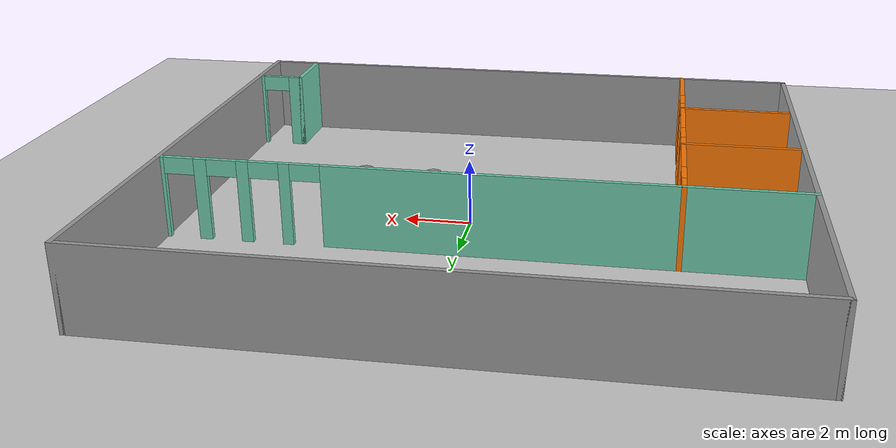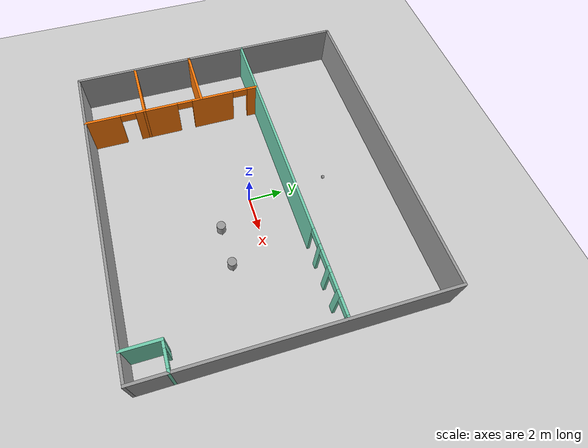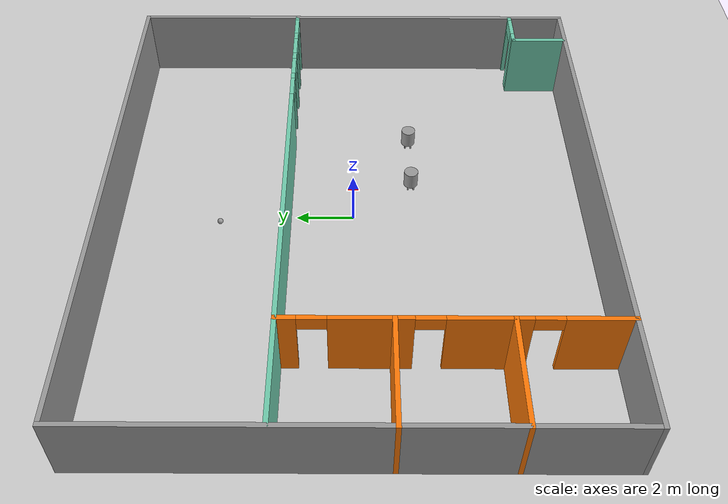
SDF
<sdf version="1.6">
 <world name="default">
  <plugin name="hello" filename="libhello.so"/>
  <light name="sun" type="directional">
   <pose>0 0 10 0 -0 0</pose>
   <diffuse>0.8 0.8 0.8 1</diffuse>
   <specular>0.2 0.2 0.2 1</specular>
   <attenuation>
    <range>1000</range>
    <constant>0.9</constant>
    <linear>0.01</linear>
    <quadratic>0.001</quadratic>
   </attenuation>
   <direction>-0.5 0.1 -0.9</direction>
  </light>
  <model name="ground_plane">
   <static>1</static>
   <link name="link">
    <collision name="collision">
     <geometry><plane><normal>0 0 1</normal><size>100 100</size></plane></geometry>
     <surface><friction><ode><mu>100</mu><mu2>50</mu2></ode></friction></surface>
    </collision>
    <visual name="visual">
     <cast_shadows>0</cast_shadows>
     <geometry><plane><normal>0 0 1</normal><size>100 100</size></plane></geometry>
     <material>
      <script><uri>file://media/materials/scripts/gazebo.material</uri><name>Gazebo/Grey</name></script>
     </material>
    </visual>
   </link>
  </model>
  <gravity>0 0 -9.8</gravity>
  <magnetic_field>6e-06 2.3e-05 -4.2e-05</magnetic_field>
  <atmosphere type="adiabatic"/>
  <physics name="default_physics" default="0" type="ode">
   <max_step_size>0.001</max_step_size>
   <real_time_factor>1</real_time_factor>
   <real_time_update_rate>1000</real_time_update_rate>
  </physics>
  <scene><ambient>0.4 0.4 0.4 1</ambient><background>0.7 0.7 0.7 1</background><shadows>1</shadows></scene>
  <spherical_coordinates>
   <surface_model>EARTH_WGS84</surface_model>
   <latitude_deg>0</latitude_deg>
   <longitude_deg>0</longitude_deg>
   <elevation>0</elevation>
   <heading_deg>0</heading_deg>
  </spherical_coordinates>
  <model name="mybuilding">
   <pose>-0.504834 0.02013 0 0 -0 0</pose>
   <link name="Wall_1">
    <collision name="Wall_1_Collision">
     <geometry><box><size>18.65 0.15 2.5</size></box></geometry>
     <pose>0 0 1.25 0 -0 0</pose>
    </collision>
    <visual name="Wall_1_Visual">
     <pose>0 0 1.25 0 -0 0</pose>
     <geometry><box><size>18.65 0.15 2.5</size></box></geometry>
     <material>
      <script><uri>file://media/materials/scripts/gazebo.material</uri><name>Gazebo/Grey</name></script>
      <ambient>1 1 1 1</ambient>
     </material>
     <meta><layer>0</layer></meta>
    </visual>
    <pose>0 8.25 0 0 -0 0</pose>
   </link>
   <link name="Wall_10">
    <collision name="Wall_10_Collision">
     <geometry><box><size>3.65 0.15 2.5</size></box></geometry>
     <pose>0 0 1.25 0 -0 0</pose>
    </collision>
    <visual name="Wall_10_Visual">
     <pose>0 0 1.25 0 -0 0</pose>
     <geometry><box><size>3.65 0.15 2.5</size></box></geometry>
     <material>
      <script><uri>file://media/materials/scripts/gazebo.material</uri><name>Gazebo/Grey</name></script>
      <ambient>0.996078 0.47451 0.0196078 1</ambient>
     </material>
     <meta><layer>0</layer></meta>
    </visual>
    <pose>-7.5 -1.25 0 0 -0 0</pose>
   </link>
   <link name="Wall_12">
    <collision name="Wall_12_Collision">
     <geometry><box><size>3.65 0.15 2.5</size></box></geometry>
     <pose>0 0 1.25 0 -0 0</pose>
    </collision>
    <visual name="Wall_12_Visual">
     <pose>0 0 1.25 0 -0 0</pose>
     <geometry><box><size>3.65 0.15 2.5</size></box></geometry>
     <material>
      <script><uri>file://media/materials/scripts/gazebo.material</uri><name>Gazebo/Grey</name></script>
      <ambient>0.996078 0.47451 0.0196078 1</ambient>
     </material>
     <meta><layer>0</layer></meta>
    </visual>
    <pose>-7.5 -4.75 0 0 -0 0</pose>
   </link>
   <link name="Wall_14">
    <collision name="Wall_14_Collision">
     <geometry><box><size>2.15 0.15 2.5</size></box></geometry>
     <pose>0 0 1.25 0 -0 0</pose>
    </collision>
    <visual name="Wall_14_Visual">
     <pose>0 0 1.25 0 -0 0</pose>
     <geometry><box><size>2.15 0.15 2.5</size></box></geometry>
     <material>
      <script><uri>file://media/materials/scripts/gazebo.material</uri><name>Gazebo/Grey</name></script>
      <ambient>0.435294 0.796078 0.67451 1</ambient>
     </material>
     <meta><layer>0</layer></meta>
    </visual>
    <pose>7.75 -7.25 0 0 -0 1.5708</pose>
   </link>
   <link name="Wall_15">
    <pose>8.5 -6.25 0 0 -0 0</pose>
    <visual name="Wall_15_Visual_0">
     <pose>-0.577478 0 1.25 0 -0 0</pose>
     <geometry><box><size>0.495043 0.15 2.5</size></box></geometry>
     <material>
      <script><uri>file://media/materials/scripts/gazebo.material</uri><name>Gazebo/Grey</name></script>
      <ambient>0.435294 0.796078 0.67451 1</ambient>
     </material>
     <meta><layer>0</layer></meta>
    </visual>
    <collision name="Wall_15_Collision_0">
     <geometry><box><size>0.495043 0.15 2.5</size></box></geometry>
     <pose>-0.577478 0 1.25 0 -0 0</pose>
    </collision>
    <visual name="Wall_15_Visual_1">
     <pose>0.697522 0 1.25 0 -0 0</pose>
     <geometry><box><size>0.254957 0.15 2.5</size></box></geometry>
     <material>
      <script><uri>file://media/materials/scripts/gazebo.material</uri><name>Gazebo/Grey</name></script>
      <ambient>0.435294 0.796078 0.67451 1</ambient>
     </material>
     <meta><layer>0</layer></meta>
    </visual>
    <collision name="Wall_15_Collision_1">
     <geometry><box><size>0.254957 0.15 2.5</size></box></geometry>
     <pose>0.697522 0 1.25 0 -0 0</pose>
    </collision>
    <visual name="Wall_15_Visual_2">
     <pose>0.120043 0 2.25 0 -0 0</pose>
     <geometry><box><size>0.9 0.15 0.5</size></box></geometry>
     <material>
      <script><uri>file://media/materials/scripts/gazebo.material</uri><name>Gazebo/Grey</name></script>
      <ambient>0.435294 0.796078 0.67451 1</ambient>
     </material>
     <meta><layer>0</layer></meta>
    </visual>
    <collision name="Wall_15_Collision_2">
     <geometry><box><size>0.9 0.15 0.5</size></box></geometry>
     <pose>0.120043 0 2.25 0 -0 0</pose>
    </collision>
   </link>
   <link name="Wall_2">
    <collision name="Wall_2_Collision">
     <geometry><box><size>16.65 0.15 2.5</size></box></geometry>
     <pose>0 0 1.25 0 -0 0</pose>
    </collision>
    <visual name="Wall_2_Visual">
     <pose>0 0 1.25 0 -0 0</pose>
     <geometry><box><size>16.65 0.15 2.5</size></box></geometry>
     <material>
      <script><uri>file://media/materials/scripts/gazebo.material</uri><name>Gazebo/Grey</name></script>
      <ambient>1 1 1 1</ambient>
     </material>
     <meta><layer>0</layer></meta>
    </visual>
    <pose>9.25 0 0 0 0 -1.5708</pose>
   </link>
   <link name="Wall_3">
    <collision name="Wall_3_Collision">
     <geometry><box><size>18.65 0.15 2.5</size></box></geometry>
     <pose>0 0 1.25 0 -0 0</pose>
    </collision>
    <visual name="Wall_3_Visual">
     <pose>0 0 1.25 0 -0 0</pose>
     <geometry><box><size>18.65 0.15 2.5</size></box></geometry>
     <material>
      <script><uri>file://media/materials/scripts/gazebo.material</uri><name>Gazebo/Grey</name></script>
      <ambient>1 1 1 1</ambient>
     </material>
     <meta><layer>0</layer></meta>
    </visual>
    <pose>0 -8.25 0 0 -0 3.14159</pose>
   </link>
   <link name="Wall_4">
    <collision name="Wall_4_Collision">
     <geometry><box><size>16.65 0.15 2.5</size></box></geometry>
     <pose>0 0 1.25 0 -0 0</pose>
    </collision>
    <visual name="Wall_4_Visual">
     <pose>0 0 1.25 0 -0 0</pose>
     <geometry><box><size>16.65 0.15 2.5</size></box></geometry>
     <material>
      <script><uri>file://media/materials/scripts/gazebo.material</uri><name>Gazebo/Grey</name></script>
      <ambient>1 1 1 1</ambient>
     </material>
     <meta><layer>0</layer></meta>
    </visual>
    <pose>-9.25 0 0 0 -0 1.5708</pose>
   </link>
   <link name="Wall_6">
    <pose>0 2.25 0 0 -0 0</pose>
    <visual name="Wall_6_Visual_0">
     <pose>-2.45878 0 1.25 0 -0 0</pose>
     <geometry><box><size>13.7324 0.15 2.5</size></box></geometry>
     <material>
      <script><uri>file://media/materials/scripts/gazebo.material</uri><name>Gazebo/Grey</name></script>
      <ambient>0.435294 0.796078 0.67451 1</ambient>
     </material>
     <meta><layer>0</layer></meta>
    </visual>
    <collision name="Wall_6_Collision_0">
     <geometry><box><size>13.7324 0.15 2.5</size></box></geometry>
     <pose>-2.45878 0 1.25 0 -0 0</pose>
    </collision>
    <visual name="Wall_6_Visual_1">
     <pose>5.46925 0 1.25 0 -0 0</pose>
     <geometry><box><size>0.323609 0.15 2.5</size></box></geometry>
     <material>
      <script><uri>file://media/materials/scripts/gazebo.material</uri><name>Gazebo/Grey</name></script>
      <ambient>0.435294 0.796078 0.67451 1</ambient>
     </material>
     <meta><layer>0</layer></meta>
    </visual>
    <collision name="Wall_6_Collision_1">
     <geometry><box><size>0.323609 0.15 2.5</size></box></geometry>
     <pose>5.46925 0 1.25 0 -0 0</pose>
    </collision>
    <visual name="Wall_6_Visual_2">
     <pose>6.70815 0 1.25 0 -0 0</pose>
     <geometry><box><size>0.3542 0.15 2.5</size></box></geometry>
     <material>
      <script><uri>file://media/materials/scripts/gazebo.material</uri><name>Gazebo/Grey</name></script>
      <ambient>0.435294 0.796078 0.67451 1</ambient>
     </material>
     <meta><layer>0</layer></meta>
    </visual>
    <collision name="Wall_6_Collision_2">
     <geometry><box><size>0.3542 0.15 2.5</size></box></geometry>
     <pose>6.70815 0 1.25 0 -0 0</pose>
    </collision>
    <visual name="Wall_6_Visual_3">
     <pose>7.97765 0 1.25 0 -0 0</pose>
     <geometry><box><size>0.38479 0.15 2.5</size></box></geometry>
     <material>
      <script><uri>file://media/materials/scripts/gazebo.material</uri><name>Gazebo/Grey</name></script>
      <ambient>0.435294 0.796078 0.67451 1</ambient>
     </material>
     <meta><layer>0</layer></meta>
    </visual>
    <collision name="Wall_6_Collision_3">
     <geometry><box><size>0.38479 0.15 2.5</size></box></geometry>
     <pose>7.97765 0 1.25 0 -0 0</pose>
    </collision>
    <visual name="Wall_6_Visual_4">
     <pose>9.19752 0 1.25 0 -0 0</pose>
     <geometry><box><size>0.254957 0.15 2.5</size></box></geometry>
     <material>
      <script><uri>file://media/materials/scripts/gazebo.material</uri><name>Gazebo/Grey</name></script>
      <ambient>0.435294 0.796078 0.67451 1</ambient>
     </material>
     <meta><layer>0</layer></meta>
    </visual>
    <collision name="Wall_6_Collision_4">
     <geometry><box><size>0.254957 0.15 2.5</size></box></geometry>
     <pose>9.19752 0 1.25 0 -0 0</pose>
    </collision>
    <visual name="Wall_6_Visual_5">
     <pose>4.85745 0 2.25 0 -0 0</pose>
     <geometry><box><size>0.9 0.15 0.5</size></box></geometry>
     <material>
      <script><uri>file://media/materials/scripts/gazebo.material</uri><name>Gazebo/Grey</name></script>
      <ambient>0.435294 0.796078 0.67451 1</ambient>
     </material>
     <meta><layer>0</layer></meta>
    </visual>
    <collision name="Wall_6_Collision_5">
     <geometry><box><size>0.9 0.15 0.5</size></box></geometry>
     <pose>4.85745 0 2.25 0 -0 0</pose>
    </collision>
    <visual name="Wall_6_Visual_6">
     <pose>6.08105 0 2.25 0 -0 0</pose>
     <geometry><box><size>0.9 0.15 0.5</size></box></geometry>
     <material>
      <script><uri>file://media/materials/scripts/gazebo.material</uri><name>Gazebo/Grey</name></script>
      <ambient>0.435294 0.796078 0.67451 1</ambient>
     </material>
     <meta><layer>0</layer></meta>
    </visual>
    <collision name="Wall_6_Collision_6">
     <geometry><box><size>0.9 0.15 0.5</size></box></geometry>
     <pose>6.08105 0 2.25 0 -0 0</pose>
    </collision>
    <visual name="Wall_6_Visual_7">
     <pose>7.33525 0 2.25 0 -0 0</pose>
     <geometry><box><size>0.9 0.15 0.5</size></box></geometry>
     <material>
      <script><uri>file://media/materials/scripts/gazebo.material</uri><name>Gazebo/Grey</name></script>
      <ambient>0.435294 0.796078 0.67451 1</ambient>
     </material>
     <meta><layer>0</layer></meta>
    </visual>
    <collision name="Wall_6_Collision_7">
     <geometry><box><size>0.9 0.15 0.5</size></box></geometry>
     <pose>7.33525 0 2.25 0 -0 0</pose>
    </collision>
    <visual name="Wall_6_Visual_8">
     <pose>8.62004 0 2.25 0 -0 0</pose>
     <geometry><box><size>0.9 0.15 0.5</size></box></geometry>
     <material>
      <script><uri>file://media/materials/scripts/gazebo.material</uri><name>Gazebo/Grey</name></script>
      <ambient>0.435294 0.796078 0.67451 1</ambient>
     </material>
     <meta><layer>0</layer></meta>
    </visual>
    <collision name="Wall_6_Collision_8">
     <geometry><box><size>0.9 0.15 0.5</size></box></geometry>
     <pose>8.62004 0 2.25 0 -0 0</pose>
    </collision>
   </link>
   <link name="Wall_8">
    <pose>-5.75 -3 0 0 0 -1.5708</pose>
    <visual name="Wall_8_Visual_0">
     <pose>-4.97355 0 1.25 0 -0 0</pose>
     <geometry><box><size>0.702904 0.15 2.5</size></box></geometry>
     <material>
      <script><uri>file://media/materials/scripts/gazebo.material</uri><name>Gazebo/Grey</name></script>
      <ambient>0.996078 0.47451 0.0196078 1</ambient>
     </material>
     <meta><layer>0</layer></meta>
    </visual>
    <collision name="Wall_8_Collision_0">
     <geometry><box><size>0.702904 0.15 2.5</size></box></geometry>
     <pose>-4.97355 0 1.25 0 -0 0</pose>
    </collision>
    <visual name="Wall_8_Visual_1">
     <pose>-2.44375 0 1.25 0 -0 0</pose>
     <geometry><box><size>2.5567 0.15 2.5</size></box></geometry>
     <material>
      <script><uri>file://media/materials/scripts/gazebo.material</uri><name>Gazebo/Grey</name></script>
      <ambient>0.996078 0.47451 0.0196078 1</ambient>
     </material>
     <meta><layer>0</layer></meta>
    </visual>
    <collision name="Wall_8_Collision_1">
     <geometry><box><size>2.5567 0.15 2.5</size></box></geometry>
     <pose>-2.44375 0 1.25 0 -0 0</pose>
    </collision>
    <visual name="Wall_8_Visual_2">
     <pose>1.01295 0 1.25 0 -0 0</pose>
     <geometry><box><size>2.5567 0.15 2.5</size></box></geometry>
     <material>
      <script><uri>file://media/materials/scripts/gazebo.material</uri><name>Gazebo/Grey</name></script>
      <ambient>0.996078 0.47451 0.0196078 1</ambient>
     </material>
     <meta><layer>0</layer></meta>
    </visual>
    <collision name="Wall_8_Collision_2">
     <geometry><box><size>2.5567 0.15 2.5</size></box></geometry>
     <pose>1.01295 0 1.25 0 -0 0</pose>
    </collision>
    <visual name="Wall_8_Visual_3">
     <pose>4.25815 0 1.25 0 -0 0</pose>
     <geometry><box><size>2.1337 0.15 2.5</size></box></geometry>
     <material>
      <script><uri>file://media/materials/scripts/gazebo.material</uri><name>Gazebo/Grey</name></script>
      <ambient>0.996078 0.47451 0.0196078 1</ambient>
     </material>
     <meta><layer>0</layer></meta>
    </visual>
    <collision name="Wall_8_Collision_3">
     <geometry><box><size>2.1337 0.15 2.5</size></box></geometry>
     <pose>4.25815 0 1.25 0 -0 0</pose>
    </collision>
    <visual name="Wall_8_Visual_4">
     <pose>-4.1721 0 2.25 0 -0 0</pose>
     <geometry><box><size>0.9 0.15 0.5</size></box></geometry>
     <material>
      <script><uri>file://media/materials/scripts/gazebo.material</uri><name>Gazebo/Grey</name></script>
      <ambient>0.996078 0.47451 0.0196078 1</ambient>
     </material>
     <meta><layer>0</layer></meta>
    </visual>
    <collision name="Wall_8_Collision_4">
     <geometry><box><size>0.9 0.15 0.5</size></box></geometry>
     <pose>-4.1721 0 2.25 0 -0 0</pose>
    </collision>
    <visual name="Wall_8_Visual_5">
     <pose>-0.715401 0 2.25 0 -0 0</pose>
     <geometry><box><size>0.9 0.15 0.5</size></box></geometry>
     <material>
      <script><uri>file://media/materials/scripts/gazebo.material</uri><name>Gazebo/Grey</name></script>
      <ambient>0.996078 0.47451 0.0196078 1</ambient>
     </material>
     <meta><layer>0</layer></meta>
    </visual>
    <collision name="Wall_8_Collision_5">
     <geometry><box><size>0.9 0.15 0.5</size></box></geometry>
     <pose>-0.715401 0 2.25 0 -0 0</pose>
    </collision>
    <visual name="Wall_8_Visual_6">
     <pose>2.7413 0 2.25 0 -0 0</pose>
     <geometry><box><size>0.9 0.15 0.5</size></box></geometry>
     <material>
      <script><uri>file://media/materials/scripts/gazebo.material</uri><name>Gazebo/Grey</name></script>
      <ambient>0.996078 0.47451 0.0196078 1</ambient>
     </material>
     <meta><layer>0</layer></meta>
    </visual>
    <collision name="Wall_8_Collision_6">
     <geometry><box><size>0.9 0.15 0.5</size></box></geometry>
     <pose>2.7413 0 2.25 0 -0 0</pose>
    </collision>
   </link>
   <static>1</static>
  </model>
  <model name="robot1">
   <link name="link_1">
    <pose>0.0125 -0 0.3 0 -0 0</pose>
    <inertial>
     <mass>1</mass>
     <inertia><ixx>0.145833</ixx><ixy>0</ixy><ixz>0</ixz><iyy>0.145833</iyy><iyz>0</iyz><izz>0.125</izz></inertia>
    </inertial>
    <visual name="visual">
     <geometry><cylinder><radius>0.25</radius><length>0.6</length></cylinder></geometry>
     <material>
      <lighting>1</lighting>
      <script><uri>file://media/materials/scripts/gazebo.material</uri><name>Gazebo/Grey</name></script>
      <shader type="pixel"><normal_map>__default__</normal_map></shader>
      <ambient>0.3 0.3 0.3 1</ambient>
      <diffuse>0.7 0.7 0.7 1</diffuse>
      <specular>0.01 0.01 0.01 1</specular>
      <emissive>0 0 0 1</emissive>
     </material>
    </visual>
    <collision name="collision">
     <geometry><cylinder><radius>0.25</radius><length>0.6</length></cylinder></geometry>
     <surface>
      <friction>
       <ode><mu>1</mu><mu2>1</mu2><fdir1>0 0 0</fdir1><slip1>0</slip1><slip2>0</slip2></ode>
       <torsional>
        <coefficient>1</coefficient>
        <patch_radius>0</patch_radius>
        <surface_radius>0</surface_radius>
        <use_patch_radius>1</use_patch_radius>
        <ode><slip>0</slip></ode>
       </torsional>
      </friction>
      <bounce><restitution_coefficient>0</restitution_coefficient><threshold>1e+06</threshold></bounce>
      <contact>
       <collide_without_contact>0</collide_without_contact>
       <collide_without_contact_bitmask>1</collide_without_contact_bitmask>
       <collide_bitmask>1</collide_bitmask>
       <ode>
        <soft_cfm>0</soft_cfm>
        <soft_erp>0.2</soft_erp>
        <kp>1e+13</kp>
        <kd>1</kd>
        <max_vel>0.01</max_vel>
        <min_depth>0</min_depth>
       </ode>
       <bullet>
        <split_impulse>1</split_impulse>
        <split_impulse_penetration_threshold>-0.01</split_impulse_penetration_threshold>
        <soft_cfm>0</soft_cfm>
        <soft_erp>0.2</soft_erp>
        <kp>1e+13</kp>
        <kd>1</kd>
       </bullet>
      </contact>
     </surface>
    </collision>
   </link>
   <link name="link_5">
    <pose>-0.0875 0.1 -0.1 1.5707 -0 0</pose>
    <inertial>
     <mass>1</mass>
     <inertia><ixx>0.145833</ixx><ixy>0</ixy><ixz>0</ixz><iyy>0.145833</iyy><iyz>0</iyz><izz>0.125</izz></inertia>
    </inertial>
    <visual name="visual">
     <geometry><cylinder><radius>0.1</radius><length>0.05</length></cylinder></geometry>
     <material>
      <lighting>1</lighting>
      <script><uri>file://media/materials/scripts/gazebo.material</uri><name>Gazebo/Grey</name></script>
      <shader type="pixel"><normal_map>__default__</normal_map></shader>
      <ambient>0.3 0.3 0.3 1</ambient>
      <diffuse>0.7 0.7 0.7 1</diffuse>
      <specular>0.01 0.01 0.01 1</specular>
      <emissive>0 0 0 1</emissive>
     </material>
    </visual>
    <collision name="collision">
     <geometry><cylinder><radius>0.1</radius><length>0.05</length></cylinder></geometry>
     <surface>
      <friction>
       <ode><mu>1</mu><mu2>1</mu2><fdir1>0 0 0</fdir1><slip1>0</slip1><slip2>0</slip2></ode>
       <torsional>
        <coefficient>1</coefficient>
        <patch_radius>0</patch_radius>
        <surface_radius>0</surface_radius>
        <use_patch_radius>1</use_patch_radius>
        <ode><slip>0</slip></ode>
       </torsional>
      </friction>
      <bounce><restitution_coefficient>0</restitution_coefficient><threshold>1e+06</threshold></bounce>
      <contact>
       <collide_without_contact>0</collide_without_contact>
       <collide_without_contact_bitmask>1</collide_without_contact_bitmask>
       <collide_bitmask>1</collide_bitmask>
       <ode>
        <soft_cfm>0</soft_cfm>
        <soft_erp>0.2</soft_erp>
        <kp>1e+13</kp>
        <kd>1</kd>
        <max_vel>0.01</max_vel>
        <min_depth>0</min_depth>
       </ode>
       <bullet>
        <split_impulse>1</split_impulse>
        <split_impulse_penetration_threshold>-0.01</split_impulse_penetration_threshold>
        <soft_cfm>0</soft_cfm>
        <soft_erp>0.2</soft_erp>
        <kp>1e+13</kp>
        <kd>1</kd>
       </bullet>
      </contact>
     </surface>
    </collision>
   </link>
   <link name="link_5_clone">
    <pose>-0.0875 -0.1 -0.1 1.5707 -0 0</pose>
    <inertial>
     <mass>1</mass>
     <inertia><ixx>0.145833</ixx><ixy>0</ixy><ixz>0</ixz><iyy>0.145833</iyy><iyz>0</iyz><izz>0.125</izz></inertia>
    </inertial>
    <visual name="visual">
     <geometry><cylinder><radius>0.1</radius><length>0.05</length></cylinder></geometry>
     <material>
      <lighting>1</lighting>
      <script><uri>file://media/materials/scripts/gazebo.material</uri><name>Gazebo/Grey</name></script>
      <shader type="pixel"><normal_map>__default__</normal_map></shader>
      <ambient>0.3 0.3 0.3 1</ambient>
      <diffuse>0.7 0.7 0.7 1</diffuse>
      <specular>0.01 0.01 0.01 1</specular>
      <emissive>0 0 0 1</emissive>
     </material>
    </visual>
    <collision name="collision">
     <geometry><cylinder><radius>0.1</radius><length>0.05</length></cylinder></geometry>
     <surface>
      <friction>
       <ode><mu>1</mu><mu2>1</mu2><fdir1>0 0 0</fdir1><slip1>0</slip1><slip2>0</slip2></ode>
       <torsional>
        <coefficient>1</coefficient>
        <patch_radius>0</patch_radius>
        <surface_radius>0</surface_radius>
        <use_patch_radius>1</use_patch_radius>
        <ode><slip>0</slip></ode>
       </torsional>
      </friction>
      <bounce><restitution_coefficient>0</restitution_coefficient><threshold>1e+06</threshold></bounce>
      <contact>
       <collide_without_contact>0</collide_without_contact>
       <collide_without_contact_bitmask>1</collide_without_contact_bitmask>
       <collide_bitmask>1</collide_bitmask>
       <ode>
        <soft_cfm>0</soft_cfm>
        <soft_erp>0.2</soft_erp>
        <kp>1e+13</kp>
        <kd>1</kd>
        <max_vel>0.01</max_vel>
        <min_depth>0</min_depth>
       </ode>
       <bullet>
        <split_impulse>1</split_impulse>
        <split_impulse_penetration_threshold>-0.01</split_impulse_penetration_threshold>
        <soft_cfm>0</soft_cfm>
        <soft_erp>0.2</soft_erp>
        <kp>1e+13</kp>
        <kd>1</kd>
       </bullet>
      </contact>
     </surface>
    </collision>
   </link>
   <link name="link_5_clone_clone">
    <pose>0.1625 -0 -0.1 1.5707 -0 0</pose>
    <inertial>
     <mass>1</mass>
     <inertia><ixx>0.145833</ixx><ixy>0</ixy><ixz>0</ixz><iyy>0.145833</iyy><iyz>0</iyz><izz>0.125</izz></inertia>
    </inertial>
    <visual name="visual">
     <geometry><cylinder><radius>0.1</radius><length>0.05</length></cylinder></geometry>
     <material>
      <lighting>1</lighting>
      <script><uri>file://media/materials/scripts/gazebo.material</uri><name>Gazebo/Grey</name></script>
      <shader type="pixel"><normal_map>__default__</normal_map></shader>
      <ambient>0.3 0.3 0.3 1</ambient>
      <diffuse>0.7 0.7 0.7 1</diffuse>
      <specular>0.01 0.01 0.01 1</specular>
      <emissive>0 0 0 1</emissive>
     </material>
    </visual>
    <collision name="collision">
     <geometry><cylinder><radius>0.1</radius><length>0.05</length></cylinder></geometry>
     <surface>
      <friction>
       <ode><mu>1</mu><mu2>1</mu2><fdir1>0 0 0</fdir1><slip1>0</slip1><slip2>0</slip2></ode>
       <torsional>
        <coefficient>1</coefficient>
        <patch_radius>0</patch_radius>
        <surface_radius>0</surface_radius>
        <use_patch_radius>1</use_patch_radius>
        <ode><slip>0</slip></ode>
       </torsional>
      </friction>
      <bounce><restitution_coefficient>0</restitution_coefficient><threshold>1e+06</threshold></bounce>
      <contact>
       <collide_without_contact>0</collide_without_contact>
       <collide_without_contact_bitmask>1</collide_without_contact_bitmask>
       <collide_bitmask>1</collide_bitmask>
       <ode>
        <soft_cfm>0</soft_cfm>
        <soft_erp>0.2</soft_erp>
        <kp>1e+13</kp>
        <kd>1</kd>
        <max_vel>0.01</max_vel>
        <min_depth>0</min_depth>
       </ode>
       <bullet>
        <split_impulse>1</split_impulse>
        <split_impulse_penetration_threshold>-0.01</split_impulse_penetration_threshold>
        <soft_cfm>0</soft_cfm>
        <soft_erp>0.2</soft_erp>
        <kp>1e+13</kp>
        <kd>1</kd>
       </bullet>
      </contact>
     </surface>
    </collision>
   </link>
   <joint name="link_1_JOINT_0" type="fixed">
    <parent>link_1</parent>
    <child>link_5</child>
    <pose>0 0 0 0 -0 0.01</pose>
    <physics>
     <ode><limit><cfm>0</cfm><erp>0.2</erp></limit><suspension><cfm>0</cfm><erp>0.2</erp></suspension></ode>
    </physics>
   </joint>
   <joint name="link_1_JOINT_1" type="fixed">
    <parent>link_1</parent>
    <child>link_5_clone</child>
    <physics>
     <ode><limit><cfm>0</cfm><erp>0.2</erp></limit><suspension><cfm>0</cfm><erp>0.2</erp></suspension></ode>
    </physics>
   </joint>
   <joint name="link_1_JOINT_2" type="revolute">
    <parent>link_1</parent>
    <child>link_5_clone_clone</child>
    <axis>
     <xyz>1 0 0</xyz>
     <use_parent_model_frame>0</use_parent_model_frame>
     <limit>
      <lower>-1.79769e+308</lower>
      <upper>1.79769e+308</upper>
      <effort>-1</effort>
      <velocity>-1</velocity>
     </limit>
     <dynamics>
      <spring_reference>0</spring_reference>
      <spring_stiffness>0</spring_stiffness>
      <damping>0</damping>
     </dynamics>
    </axis>
    <physics>
     <ode><limit><cfm>0</cfm><erp>0.2</erp></limit><suspension><cfm>0</cfm><erp>0.2</erp></suspension></ode>
    </physics>
   </joint>
   <static>0</static>
   <pose>3.79103 -2.06737 0.200001 2e-06 1.1e-05 0.009728</pose>
  </model>
  <model name="robot1_0">
   <link name="link_1">
    <pose>0.0125 -0 0.3 0 -0 0</pose>
    <inertial>
     <mass>1</mass>
     <inertia><ixx>0.145833</ixx><ixy>0</ixy><ixz>0</ixz><iyy>0.145833</iyy><iyz>0</iyz><izz>0.125</izz></inertia>
    </inertial>
    <visual name="visual">
     <geometry><cylinder><radius>0.25</radius><length>0.6</length></cylinder></geometry>
     <material>
      <lighting>1</lighting>
      <script><uri>file://media/materials/scripts/gazebo.material</uri><name>Gazebo/Grey</name></script>
      <shader type="pixel"><normal_map>__default__</normal_map></shader>
      <ambient>0.3 0.3 0.3 1</ambient>
      <diffuse>0.7 0.7 0.7 1</diffuse>
      <specular>0.01 0.01 0.01 1</specular>
      <emissive>0 0 0 1</emissive>
     </material>
    </visual>
    <collision name="collision">
     <geometry><cylinder><radius>0.25</radius><length>0.6</length></cylinder></geometry>
     <surface>
      <friction>
       <ode><mu>1</mu><mu2>1</mu2><fdir1>0 0 0</fdir1><slip1>0</slip1><slip2>0</slip2></ode>
       <torsional>
        <coefficient>1</coefficient>
        <patch_radius>0</patch_radius>
        <surface_radius>0</surface_radius>
        <use_patch_radius>1</use_patch_radius>
        <ode><slip>0</slip></ode>
       </torsional>
      </friction>
      <bounce><restitution_coefficient>0</restitution_coefficient><threshold>1e+06</threshold></bounce>
      <contact>
       <collide_without_contact>0</collide_without_contact>
       <collide_without_contact_bitmask>1</collide_without_contact_bitmask>
       <collide_bitmask>1</collide_bitmask>
       <ode>
        <soft_cfm>0</soft_cfm>
        <soft_erp>0.2</soft_erp>
        <kp>1e+13</kp>
        <kd>1</kd>
        <max_vel>0.01</max_vel>
        <min_depth>0</min_depth>
       </ode>
       <bullet>
        <split_impulse>1</split_impulse>
        <split_impulse_penetration_threshold>-0.01</split_impulse_penetration_threshold>
        <soft_cfm>0</soft_cfm>
        <soft_erp>0.2</soft_erp>
        <kp>1e+13</kp>
        <kd>1</kd>
       </bullet>
      </contact>
     </surface>
    </collision>
   </link>
   <link name="link_5">
    <pose>-0.0875 0.1 -0.1 1.5707 -0 0</pose>
    <inertial>
     <mass>1</mass>
     <inertia><ixx>0.145833</ixx><ixy>0</ixy><ixz>0</ixz><iyy>0.145833</iyy><iyz>0</iyz><izz>0.125</izz></inertia>
    </inertial>
    <visual name="visual">
     <geometry><cylinder><radius>0.1</radius><length>0.05</length></cylinder></geometry>
     <material>
      <lighting>1</lighting>
      <script><uri>file://media/materials/scripts/gazebo.material</uri><name>Gazebo/Grey</name></script>
      <shader type="pixel"><normal_map>__default__</normal_map></shader>
      <ambient>0.3 0.3 0.3 1</ambient>
      <diffuse>0.7 0.7 0.7 1</diffuse>
      <specular>0.01 0.01 0.01 1</specular>
      <emissive>0 0 0 1</emissive>
     </material>
    </visual>
    <collision name="collision">
     <geometry><cylinder><radius>0.1</radius><length>0.05</length></cylinder></geometry>
     <surface>
      <friction>
       <ode><mu>1</mu><mu2>1</mu2><fdir1>0 0 0</fdir1><slip1>0</slip1><slip2>0</slip2></ode>
       <torsional>
        <coefficient>1</coefficient>
        <patch_radius>0</patch_radius>
        <surface_radius>0</surface_radius>
        <use_patch_radius>1</use_patch_radius>
        <ode><slip>0</slip></ode>
       </torsional>
      </friction>
      <bounce><restitution_coefficient>0</restitution_coefficient><threshold>1e+06</threshold></bounce>
      <contact>
       <collide_without_contact>0</collide_without_contact>
       <collide_without_contact_bitmask>1</collide_without_contact_bitmask>
       <collide_bitmask>1</collide_bitmask>
       <ode>
        <soft_cfm>0</soft_cfm>
        <soft_erp>0.2</soft_erp>
        <kp>1e+13</kp>
        <kd>1</kd>
        <max_vel>0.01</max_vel>
        <min_depth>0</min_depth>
       </ode>
       <bullet>
        <split_impulse>1</split_impulse>
        <split_impulse_penetration_threshold>-0.01</split_impulse_penetration_threshold>
        <soft_cfm>0</soft_cfm>
        <soft_erp>0.2</soft_erp>
        <kp>1e+13</kp>
        <kd>1</kd>
       </bullet>
      </contact>
     </surface>
    </collision>
   </link>
   <link name="link_5_clone">
    <pose>-0.0875 -0.1 -0.1 1.5707 -0 0</pose>
    <inertial>
     <mass>1</mass>
     <inertia><ixx>0.145833</ixx><ixy>0</ixy><ixz>0</ixz><iyy>0.145833</iyy><iyz>0</iyz><izz>0.125</izz></inertia>
    </inertial>
    <visual name="visual">
     <geometry><cylinder><radius>0.1</radius><length>0.05</length></cylinder></geometry>
     <material>
      <lighting>1</lighting>
      <script><uri>file://media/materials/scripts/gazebo.material</uri><name>Gazebo/Grey</name></script>
      <shader type="pixel"><normal_map>__default__</normal_map></shader>
      <ambient>0.3 0.3 0.3 1</ambient>
      <diffuse>0.7 0.7 0.7 1</diffuse>
      <specular>0.01 0.01 0.01 1</specular>
      <emissive>0 0 0 1</emissive>
     </material>
    </visual>
    <collision name="collision">
     <geometry><cylinder><radius>0.1</radius><length>0.05</length></cylinder></geometry>
     <surface>
      <friction>
       <ode><mu>1</mu><mu2>1</mu2><fdir1>0 0 0</fdir1><slip1>0</slip1><slip2>0</slip2></ode>
       <torsional>
        <coefficient>1</coefficient>
        <patch_radius>0</patch_radius>
        <surface_radius>0</surface_radius>
        <use_patch_radius>1</use_patch_radius>
        <ode><slip>0</slip></ode>
       </torsional>
      </friction>
      <bounce><restitution_coefficient>0</restitution_coefficient><threshold>1e+06</threshold></bounce>
      <contact>
       <collide_without_contact>0</collide_without_contact>
       <collide_without_contact_bitmask>1</collide_without_contact_bitmask>
       <collide_bitmask>1</collide_bitmask>
       <ode>
        <soft_cfm>0</soft_cfm>
        <soft_erp>0.2</soft_erp>
        <kp>1e+13</kp>
        <kd>1</kd>
        <max_vel>0.01</max_vel>
        <min_depth>0</min_depth>
       </ode>
       <bullet>
        <split_impulse>1</split_impulse>
        <split_impulse_penetration_threshold>-0.01</split_impulse_penetration_threshold>
        <soft_cfm>0</soft_cfm>
        <soft_erp>0.2</soft_erp>
        <kp>1e+13</kp>
        <kd>1</kd>
       </bullet>
      </contact>
     </surface>
    </collision>
   </link>
   <link name="link_5_clone_clone">
    <pose>0.1625 -0 -0.1 1.5707 -0 0</pose>
    <inertial>
     <mass>1</mass>
     <inertia><ixx>0.145833</ixx><ixy>0</ixy><ixz>0</ixz><iyy>0.145833</iyy><iyz>0</iyz><izz>0.125</izz></inertia>
    </inertial>
    <visual name="visual">
     <geometry><cylinder><radius>0.1</radius><length>0.05</length></cylinder></geometry>
     <material>
      <lighting>1</lighting>
      <script><uri>file://media/materials/scripts/gazebo.material</uri><name>Gazebo/Grey</name></script>
      <shader type="pixel"><normal_map>__default__</normal_map></shader>
      <ambient>0.3 0.3 0.3 1</ambient>
      <diffuse>0.7 0.7 0.7 1</diffuse>
      <specular>0.01 0.01 0.01 1</specular>
      <emissive>0 0 0 1</emissive>
     </material>
    </visual>
    <collision name="collision">
     <geometry><cylinder><radius>0.1</radius><length>0.05</length></cylinder></geometry>
     <surface>
      <friction>
       <ode><mu>1</mu><mu2>1</mu2><fdir1>0 0 0</fdir1><slip1>0</slip1><slip2>0</slip2></ode>
       <torsional>
        <coefficient>1</coefficient>
        <patch_radius>0</patch_radius>
        <surface_radius>0</surface_radius>
        <use_patch_radius>1</use_patch_radius>
        <ode><slip>0</slip></ode>
       </torsional>
      </friction>
      <bounce><restitution_coefficient>0</restitution_coefficient><threshold>1e+06</threshold></bounce>
      <contact>
       <collide_without_contact>0</collide_without_contact>
       <collide_without_contact_bitmask>1</collide_without_contact_bitmask>
       <collide_bitmask>1</collide_bitmask>
       <ode>
        <soft_cfm>0</soft_cfm>
        <soft_erp>0.2</soft_erp>
        <kp>1e+13</kp>
        <kd>1</kd>
        <max_vel>0.01</max_vel>
        <min_depth>0</min_depth>
       </ode>
       <bullet>
        <split_impulse>1</split_impulse>
        <split_impulse_penetration_threshold>-0.01</split_impulse_penetration_threshold>
        <soft_cfm>0</soft_cfm>
        <soft_erp>0.2</soft_erp>
        <kp>1e+13</kp>
        <kd>1</kd>
       </bullet>
      </contact>
     </surface>
    </collision>
   </link>
   <joint name="link_1_JOINT_0" type="fixed">
    <parent>link_1</parent>
    <child>link_5</child>
    <pose>0 0 0 0 -0 0.01</pose>
    <physics>
     <ode><limit><cfm>0</cfm><erp>0.2</erp></limit><suspension><cfm>0</cfm><erp>0.2</erp></suspension></ode>
    </physics>
   </joint>
   <joint name="link_1_JOINT_1" type="fixed">
    <parent>link_1</parent>
    <child>link_5_clone</child>
    <physics>
     <ode><limit><cfm>0</cfm><erp>0.2</erp></limit><suspension><cfm>0</cfm><erp>0.2</erp></suspension></ode>
    </physics>
   </joint>
   <joint name="link_1_JOINT_2" type="revolute">
    <parent>link_1</parent>
    <child>link_5_clone_clone</child>
    <axis>
     <xyz>1 0 0</xyz>
     <use_parent_model_frame>0</use_parent_model_frame>
     <limit>
      <lower>-1.79769e+308</lower>
      <upper>1.79769e+308</upper>
      <effort>-1</effort>
      <velocity>-1</velocity>
     </limit>
     <dynamics>
      <spring_reference>0</spring_reference>
      <spring_stiffness>0</spring_stiffness>
      <damping>0</damping>
     </dynamics>
    </axis>
    <physics>
     <ode><limit><cfm>0</cfm><erp>0.2</erp></limit><suspension><cfm>0</cfm><erp>0.2</erp></suspension></ode>
    </physics>
   </joint>
   <static>0</static>
   <pose>1.54884 -2.08641 0.200001 3e-06 9e-06 0.0102</pose>
  </model>
  <model name="my_ball">
   <link name="link_0">
    <inertial>
     <mass>1</mass>
     <inertia><ixx>0.1</ixx><ixy>0</ixy><ixz>0</ixz><iyy>0.1</iyy><iyz>0</iyz><izz>0.1</izz></inertia>
    </inertial>
    <visual name="visual">
     <geometry><sphere><radius>0.1</radius></sphere></geometry>
     <material>
      <lighting>1</lighting>
      <script><uri>file://media/materials/scripts/gazebo.material</uri><name>Gazebo/Grey</name></script>
      <shader type="pixel"><normal_map>__default__</normal_map></shader>
      <ambient>1 1 1 1</ambient>
      <diffuse>1 1 1 1</diffuse>
      <specular>1 1 1 1</specular>
      <emissive>1 1 1 1</emissive>
     </material>
    </visual>
    <collision name="collision">
     <geometry><sphere><radius>0.1</radius></sphere></geometry>
     <surface>
      <friction>
       <ode><mu>1</mu><mu2>1</mu2><fdir1>0 0 0</fdir1><slip1>0</slip1><slip2>0</slip2></ode>
       <torsional>
        <coefficient>1</coefficient>
        <patch_radius>0</patch_radius>
        <surface_radius>0</surface_radius>
        <use_patch_radius>1</use_patch_radius>
        <ode><slip>0</slip></ode>
       </torsional>
      </friction>
      <bounce><restitution_coefficient>0</restitution_coefficient><threshold>1e+06</threshold></bounce>
      <contact>
       <collide_without_contact>0</collide_without_contact>
       <collide_without_contact_bitmask>1</collide_without_contact_bitmask>
       <collide_bitmask>1</collide_bitmask>
       <ode>
        <soft_cfm>0</soft_cfm>
        <soft_erp>0.2</soft_erp>
        <kp>1e+13</kp>
        <kd>1</kd>
        <max_vel>0.01</max_vel>
        <min_depth>0</min_depth>
       </ode>
       <bullet>
        <split_impulse>1</split_impulse>
        <split_impulse_penetration_threshold>-0.01</split_impulse_penetration_threshold>
        <soft_cfm>0</soft_cfm>
        <soft_erp>0.2</soft_erp>
        <kp>1e+13</kp>
        <kd>1</kd>
       </bullet>
      </contact>
     </surface>
    </collision>
   </link>
   <static>0</static>
   <pose>-0.25014 4.68888 0.1 0 -0 0</pose>
  </model>
  <plugin filename="libcollision_map_creator.so" name="collision_map_creator"/>
 </world>
</sdf>
